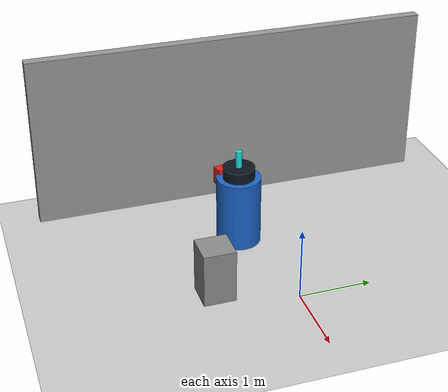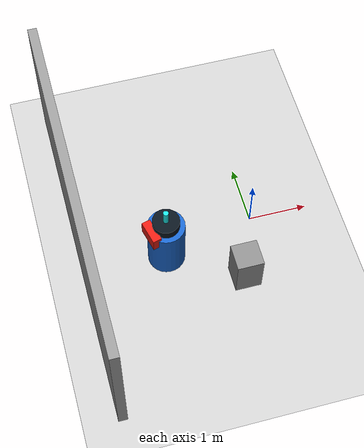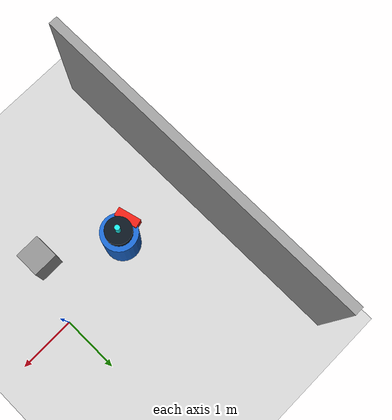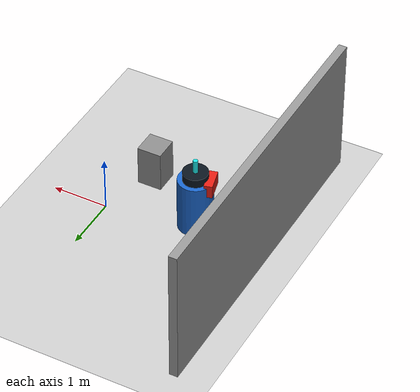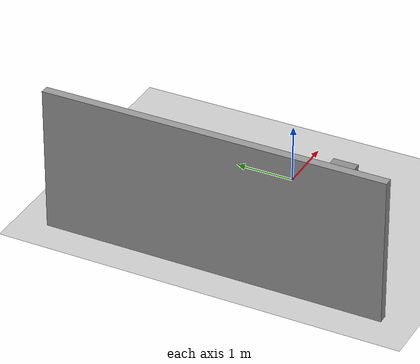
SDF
<sdf version="1.7">
 <world name="default">
  <plugin name="socnav_plugin" filename="libSocNavPlugin.so">
   <robot_name>robot</robot_name>
   <trajectory_file>/home/hunav_gz_classic_ws/SocNav3_trajectories/src6/000003826.json</trajectory_file>
   <human_slots>0</human_slots>
   <goal_angle_mesh>
    <angle_threshold>0.778109983447</angle_threshold>
    <uri>/home/hunav_gz_classic_ws/src/socnav_gazebo_reproducer/meshes/000003826_goal_angle_00.stl</uri>
   </goal_angle_mesh>
  </plugin>
  <light name="sun" type="directional">
   <pose>0 0 10 0 -0 0</pose>
   <diffuse>0.8 0.8 0.8 1</diffuse>
   <specular>0.2 0.2 0.2 1</specular>
   <attenuation>
    <range>1000</range>
    <constant>0.9</constant>
    <linear>0.01</linear>
    <quadratic>0.001</quadratic>
   </attenuation>
   <direction>-0.5 0.1 -0.9</direction>
   <spot><inner_angle>0</inner_angle><outer_angle>0</outer_angle><falloff>0</falloff></spot>
  </light>
  <model name="ground_plane">
   <static>1</static>
   <link name="link">
    <collision name="collision">
     <geometry><plane><normal>0 0 1</normal><size>100 100</size></plane></geometry>
     <surface><friction><ode><mu>100</mu><mu2>50</mu2></ode></friction></surface>
    </collision>
    <visual name="visual">
     <cast_shadows>0</cast_shadows>
     <geometry><plane><normal>0 0 1</normal><size>100 100</size></plane></geometry>
     <material>
      <script><uri>file://media/materials/scripts/kitchen.material</uri><name>Kitchen/CounterTop_H</name></script>
     </material>
    </visual>
   </link>
  </model>
  <gravity>0 0 -9.8</gravity>
  <magnetic_field>6e-06 2.3e-05 -4.2e-05</magnetic_field>
  <atmosphere type="adiabatic"/>
  <physics type="ode">
   <max_step_size>0.001</max_step_size>
   <real_time_factor>1</real_time_factor>
   <real_time_update_rate>1000</real_time_update_rate>
  </physics>
  <scene><ambient>0.4 0.4 0.4 1</ambient><background>0.7 0.7 0.7 1</background><shadows>1</shadows></scene>
  <audio><device>default</device></audio>
  <spherical_coordinates>
   <surface_model>EARTH_WGS84</surface_model>
   <latitude_deg>0</latitude_deg>
   <longitude_deg>0</longitude_deg>
   <elevation>0</elevation>
   <heading_deg>0</heading_deg>
  </spherical_coordinates>
  <model name="robot">
   <pose>-1.550609138491621 -0.3224073906572326 0.5 0 0 -2.8921820279371557</pose>
   <link name="link">
    <collision name="collision">
     <geometry><cylinder><radius>0.310013261810168</radius><length>1.0</length></cylinder></geometry>
    </collision>
    <visual name="visual">
     <geometry><cylinder><radius>0.310013261810168</radius><length>1.0</length></cylinder></geometry>
     <material><ambient>0.1 0.4 0.8 1</ambient><diffuse>0.1 0.4 0.8 1</diffuse></material>
    </visual>
    <visual name="robot_top">
     <pose>0 0 0.58 0 0 0</pose>
     <geometry><cylinder><radius>0.22320954850332092</radius><length>0.16</length></cylinder></geometry>
     <material><ambient>0.04 0.08 0.12 1</ambient><diffuse>0.04 0.08 0.12 1</diffuse></material>
    </visual>
    <visual name="robot_front">
     <pose>0.2604111399205411 0 0.44 0 0 0</pose>
     <geometry><box><size>0.1488063656688806 0.396816975117015 0.24</size></box></geometry>
     <material><ambient>0.9 0.12 0.08 1</ambient><diffuse>0.9 0.12 0.08 1</diffuse></material>
    </visual>
    <visual name="robot_sensor">
     <pose>0 0 0.78 0 0 0</pose>
     <geometry><cylinder><radius>0.04340185665342352</radius><length>0.24</length></cylinder></geometry>
     <material><ambient>0.1 0.9 0.9 1</ambient><diffuse>0.1 0.9 0.9 1</diffuse></material>
    </visual>
   </link>
  </model>
  <model name="static_object_1">
   <static>true</static>
   <pose>-0.3930675203816336 -1.0279668286115198 0.375 0 0 0</pose>
   <link name="link">
    <collision name="collision">
     <geometry><box><size>0.43892553775419124 0.43892553775419124 0.75</size></box></geometry>
    </collision>
    <visual name="visual">
     <geometry><box><size>0.43892553775419124 0.43892553775419124 0.75</size></box></geometry>
     <material><ambient>0.55 0.55 0.55 1</ambient><diffuse>0.55 0.55 0.55 1</diffuse></material>
    </visual>
   </link>
  </model>
  <model name="simple_world_test">
   <link name="Wall_0">
    <collision name="Wall_0_Collision">
     <geometry><box><size>5.85693680954603 0.15 2.5</size></box></geometry>
     <pose>0 0 1.25 0 -0 0</pose>
    </collision>
    <visual name="Wall_0_Visual">
     <pose>0 0 1.25 0 -0 0</pose>
     <geometry><box><size>5.85693680954603 0.15 2.5</size></box></geometry>
     <material>
      <script><uri>file://media/materials/scripts/gazebo.material</uri><name>Gazebo/Grey</name></script>
      <ambient>1 1 1 1</ambient>
     </material>
     <meta><layer>0</layer></meta>
    </visual>
    <pose>-2.9184684047730154 0.0 0 0 -0 1.5707963267948966</pose>
   </link>
   <static>1</static>
  </model>
 </world>
</sdf>
